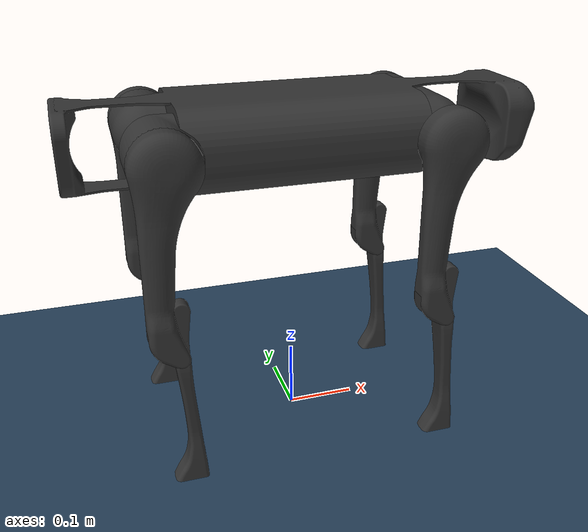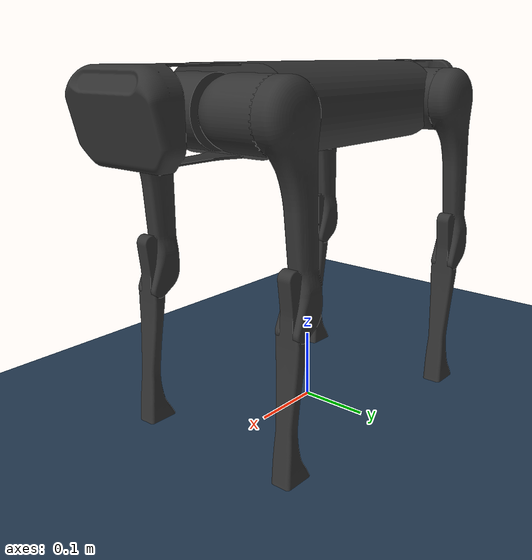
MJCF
<mujoco model="go1 scene">
  <include file="go1.xml"/>

  <statistic center="0 0 0.1" extent="0.8"/>

  <visual>
    <headlight diffuse="0.6 0.6 0.6" ambient="0.3 0.3 0.3" specular="0 0 0"/>
    <rgba haze="0.15 0.25 0.35 1"/>
    <global azimuth="-130" elevation="-20"/>
  </visual>

  <asset>
    <texture type="skybox" builtin="gradient" rgb1="0.3 0.5 0.7" rgb2="0 0 0" width="512" height="3072"/>
    <texture type="2d" name="groundplane" builtin="checker" mark="edge" rgb1="0.2 0.3 0.4" rgb2="0.1 0.2 0.3"
      markrgb="0.8 0.8 0.8" width="300" height="300"/>
    <material name="groundplane" texture="groundplane" texuniform="true" texrepeat="5 5" reflectance="0.2"/>
  </asset>

  <worldbody>
    <light pos="0 0 1.5" dir="0 0 -1" directional="true"/>
    <geom name="floor" size="0 0 0.05" type="plane" material="groundplane"/>

  </worldbody>
</mujoco>

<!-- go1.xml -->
<mujoco model="go1">
  <compiler angle="radian" meshdir="assets" autolimits="true"/>

  <option cone="elliptic" impratio="100"/>

  <default>
    <default class="go1">
      <geom friction="0.4" margin="0.001" condim="1" />
      <joint axis="0 1 0" damping="0.1" armature="0.01" frictionloss="0.2" />
      <motor ctrlrange="-23.7 23.7" />
      <default class="abduction">
        <joint axis="1 0 0" range="-0.863 0.863" />
      </default>
      <default class="hip">
        <default class="front_hip">
          <joint range="-1.5708 3.4907" />
        </default>
        <default class="back_hip">
          <joint range="-0.686 4.501" />
        </default>
      </default>
      <default class="knee">
        <joint range="-2.818 -0.888" />
        <motor ctrlrange="-35.55 35.55" />
      </default>
      <default class="visual">
        <geom type="mesh" contype="0" conaffinity="0" group="2" material="gray"/>
      </default>
      <default class="collision">
        <geom group="3" />
        <default class="foot">
          <geom type="sphere" size="0.023" pos="-0.002 0 -0.213" priority="1" condim="6"
            friction="0.8 0.02 0.01" />
        </default>
      </default>
    </default>
  </default>

  <asset>
    <material name="dark" rgba="0.1 0.1 0.1 1"/>
    <material name="metal" rgba=".9 .95 .95 1"/>
    <material name="black" rgba="0 0 0 1"/>
    <material name="ts" rgba="0.359375 0.828125 0.125 1"/>
    <material name="sh" rgba="0.34375 0.703125 0.859375 1"/>
    <material name="white" rgba="1 1 1 1"/>
    <material name="gray" rgba="0.2 0.2 0.2 1" />

    <mesh class="go1" file="trunk.stl"/>
    <mesh class="go1" file="hip.stl"/>
    <mesh class="go1" file="thigh_mirror.stl"/>
    <mesh class="go1" file="calf.stl"/>
    <mesh class="go1" file="thigh.stl"/>
  </asset>

  <worldbody>
    <light name="spotlight" mode="targetbodycom" target="trunk" pos="0 -1 2"/>
    <body name="trunk" pos="0 0 0.445" childclass="go1">
      <camera name="tracking" mode="trackcom" pos="0 -1 0.8" xyaxes="1 0 0 0 1 1"/>
      <site name="head" pos="0.3 0 0" rgba="1 0 0 1" size="0.02" group="5"/>
      <inertial pos="0.0223 0.002 -0.0005" quat="-0.00342088 0.705204 0.000106698 0.708996" mass="5.204"
        diaginertia="0.0716565 0.0630105 0.0168101"/>
      <freejoint/>
      <geom class="visual" mesh="trunk"/>
      <geom class="collision" size="0.125 0.04 0.057" type="box"/>
      <geom class="collision" quat="1 0 1 0" pos="0 -0.04 0" size="0.058 0.125" type="cylinder"/>
      <geom class="collision" quat="1 0 1 0" pos="0 +0.04 0" size="0.058 0.125" type="cylinder"/>
      <geom class="collision" pos="0.25 0 0" size="0.005 0.06 0.05" type="box"/>
      <geom class="collision" pos="0.25 0.06 -0.01" size="0.009 0.035"/>
      <geom class="collision" pos="0.25 -0.06 -0.01" size="0.009 0.035"/>
      <geom class="collision" pos="0.25 0 -0.05" size="0.01 0.06" quat="1 1 0 0"/>
      <geom class="collision" pos="0.255 0 0.0355" size="0.021 0.052" quat="1 1 0 0"/>
      <site name="imu" pos="0 0 0"/>
      <body name="FL_hip" pos="0.1881 0.04675 0">
        <inertial pos="-0.0049166 -0.00762615 -8.865e-05" quat="0.482891 0.495027 0.514169 0.507341" mass="0.68"
          diaginertia="0.000734064 0.000468438 0.000398719"/>
        <joint class="abduction" name="FL_hip_joint"/>
        <geom class="visual" mesh="hip"/>
        <body name="FL_thigh" pos="0 0.08 0">
          <inertial pos="-0.00304722 -0.019315 -0.0305004" quat="0.753383 0.0775126 -0.0272313 0.65243" mass="1.009"
            diaginertia="0.00478717 0.00460903 0.000709268"/>
          <joint class="front_hip" name="FL_thigh_joint"/>
          <geom class="visual" mesh="thigh"/>
          <body name="FL_calf" pos="0 0 -0.213">
            <inertial pos="0.00429862 0.000976676 -0.146197" quat="0.691246 0.00357467 0.00511118 0.722592"
              mass="0.195862" diaginertia="0.00149767 0.00148468 3.58427e-05"/>
            <joint class="knee" name="FL_calf_joint"/>
            <geom class="visual" mesh="calf"/>
            <geom size="0.012 0.06" pos="0.008 0 -0.06" quat="0.994493 0 -0.104807 0"
              type="cylinder" class="collision" />
            <geom size="0.011 0.0325" pos="0.02 0 -0.148" quat="0.999688 0 0.0249974 0"
              type="cylinder" class="collision" />
            <geom name="FL" class="foot"/>
            <site name="FL" pos="0 0 -0.213" type="sphere" size="0.023" group="5"/>
          </body>
        </body>
      </body>
      <body name="FR_hip" pos="0.1881 -0.04675 0">
        <inertial pos="-0.0049166 0.00762615 -8.865e-05" quat="0.507341 0.514169 0.495027 0.482891" mass="0.68"
          diaginertia="0.000734064 0.000468438 0.000398719"/>
        <joint class="abduction" name="FR_hip_joint"/>
        <geom class="visual" mesh="hip" quat="1 0 0 0"/>
        <body name="FR_thigh" pos="0 -0.08 0">
          <inertial pos="-0.00304722 0.019315 -0.0305004" quat="0.65243 -0.0272313 0.0775126 0.753383" mass="1.009"
            diaginertia="0.00478717 0.00460903 0.000709268"/>
          <joint class="front_hip" name="FR_thigh_joint"/>
          <geom class="visual" mesh="thigh_mirror"/>
          <body name="FR_calf" pos="0 0 -0.213">
            <inertial pos="0.00429862 0.000976676 -0.146197" quat="0.691246 0.00357467 0.00511118 0.722592"
              mass="0.195862" diaginertia="0.00149767 0.00148468 3.58427e-05"/>
            <joint class="knee" name="FR_calf_joint"/>
            <geom class="visual" mesh="calf"/>
            <geom size="0.013 0.06" pos="0.01 0 -0.06" quat="0.995004 0 -0.0998334 0"
              type="cylinder" class="collision" />
            <geom size="0.011 0.0325" pos="0.02 0 -0.148" quat="0.999688 0 0.0249974 0"
              type="cylinder" class="collision" />
            <geom name="FR" class="foot"/>
            <site name="FR" pos="0 0 -0.213" type="sphere" size="0.023" group="5"/>
          </body>
        </body>
      </body>
      <body name="RL_hip" pos="-0.1881 0.04675 0">
        <inertial pos="0.0049166 -0.00762615 -8.865e-05" quat="0.514169 0.507341 0.482891 0.495027" mass="0.68"
          diaginertia="0.000734064 0.000468438 0.000398719"/>
        <joint class="abduction" name="RL_hip_joint"/>
        <geom class="visual" quat="0 0 1 0" mesh="hip"/>
        <body name="RL_thigh" pos="0 0.08 0">
          <inertial pos="-0.00304722 -0.019315 -0.0305004" quat="0.753383 0.0775126 -0.0272313 0.65243" mass="1.009"
            diaginertia="0.00478717 0.00460903 0.000709268"/>
          <joint class="back_hip" name="RL_thigh_joint"/>
          <geom class="visual" mesh="thigh"/>
          <body name="RL_calf" pos="0 0 -0.213">
            <inertial pos="0.00429862 0.000976676 -0.146197" quat="0.691246 0.00357467 0.00511118 0.722592"
              mass="0.195862" diaginertia="0.00149767 0.00148468 3.58427e-05"/>
            <joint class="knee" name="RL_calf_joint"/>
            <geom class="visual" mesh="calf"/>
            <geom size="0.013 0.06" pos="0.01 0 -0.06" quat="0.995004 0 -0.0998334 0"
              type="cylinder" class="collision" />
            <geom size="0.011 0.0325" pos="0.02 0 -0.148" quat="0.999688 0 0.0249974 0"
              type="cylinder" class="collision" />
            <geom name="RL" class="foot"/>
            <site name="RL" pos="0 0 -0.213" type="sphere" size="0.023" group="5"/>
          </body>
        </body>
      </body>
      <body name="RR_hip" pos="-0.1881 -0.04675 0">
        <inertial pos="0.0049166 0.00762615 -8.865e-05" quat="0.495027 0.482891 0.507341 0.514169" mass="0.68"
          diaginertia="0.000734064 0.000468438 0.000398719"/>
        <joint class="abduction" name="RR_hip_joint"/>
        <geom class="visual" quat="0 0 0 -1" mesh="hip"/>
        <body name="RR_thigh" pos="0 -0.08 0">
          <inertial pos="-0.00304722 0.019315 -0.0305004" quat="0.65243 -0.0272313 0.0775126 0.753383" mass="1.009"
            diaginertia="0.00478717 0.00460903 0.000709268"/>
          <joint class="back_hip" name="RR_thigh_joint"/>
          <geom class="visual" mesh="thigh_mirror"/>
          <body name="RR_calf" pos="0 0 -0.213">
            <inertial pos="0.00429862 0.000976676 -0.146197" quat="0.691246 0.00357467 0.00511118 0.722592"
              mass="0.195862" diaginertia="0.00149767 0.00148468 3.58427e-05"/>
            <joint class="knee" name="RR_calf_joint"/>
            <geom class="visual" mesh="calf"/>
            <geom size="0.013 0.06" pos="0.01 0 -0.06" quat="0.995004 0 -0.0998334 0"
              type="cylinder" class="collision" />
            <geom size="0.011 0.0325" pos="0.02 0 -0.148" quat="0.999688 0 0.0249974 0"
              type="cylinder" class="collision" />
            <geom name="RR" class="foot"/>
            <site name="RR" pos="0 0 -0.213" type="sphere" size="0.023" group="5"/>
          </body>
        </body>
      </body>
    </body>
  </worldbody>

  <actuator>
    <position class="abduction" name="FL_hip" joint="FL_hip_joint"/>
    <position class="hip" name="FL_thigh" joint="FL_thigh_joint"/>
    <position class="knee" name="FL_calf" joint="FL_calf_joint"/>
    <position class="abduction" name="FR_hip" joint="FR_hip_joint"/>
    <position class="hip" name="FR_thigh" joint="FR_thigh_joint"/>
    <position class="knee" name="FR_calf" joint="FR_calf_joint"/>
    <position class="abduction" name="RL_hip" joint="RL_hip_joint"/>
    <position class="hip" name="RL_thigh" joint="RL_thigh_joint"/>
    <position class="knee" name="RL_calf" joint="RL_calf_joint"/>
    <position class="abduction" name="RR_hip" joint="RR_hip_joint"/>
    <position class="hip" name="RR_thigh" joint="RR_thigh_joint"/>
    <position class="knee" name="RR_calf" joint="RR_calf_joint"/>
  </actuator>

  <!-- This settings' is same "Go2.xml". We may need to change settings. -->
  <sensor>
    <jointpos name="FL_hip_pos" joint="FL_hip_joint" />
    <jointpos name="FL_thigh_pos" joint="FL_thigh_joint" />
    <jointpos name="FL_calf_pos" joint="FL_calf_joint" />
    <jointpos name="FR_hip_pos" joint="FR_hip_joint" />
    <jointpos name="FR_thigh_pos" joint="FR_thigh_joint" />
    <jointpos name="FR_calf_pos" joint="FR_calf_joint" />
    <jointpos name="RL_hip_pos" joint="RL_hip_joint" />
    <jointpos name="RL_thigh_pos" joint="RL_thigh_joint" />
    <jointpos name="RL_calf_pos" joint="RL_calf_joint" />
    <jointpos name="RR_hip_pos" joint="RR_hip_joint" />
    <jointpos name="RR_thigh_pos" joint="RR_thigh_joint" />
    <jointpos name="RR_calf_pos" joint="RR_calf_joint" />

    <jointvel name="FL_hip_vel" joint="FL_hip_joint" />
    <jointvel name="FL_thigh_vel" joint="FL_thigh_joint" />
    <jointvel name="FL_calf_vel" joint="FL_calf_joint" />
    <jointvel name="FR_hip_vel" joint="FR_hip_joint" />
    <jointvel name="FR_thigh_vel" joint="FR_thigh_joint" />
    <jointvel name="FR_calf_vel" joint="FR_calf_joint" />
    <jointvel name="RL_hip_vel" joint="RL_hip_joint" />
    <jointvel name="RL_thigh_vel" joint="RL_thigh_joint" />
    <jointvel name="RL_calf_vel" joint="RL_calf_joint" />
    <jointvel name="RR_hip_vel" joint="RR_hip_joint" />
    <jointvel name="RR_thigh_vel" joint="RR_thigh_joint" />
    <jointvel name="RR_calf_vel" joint="RR_calf_joint" />

    <jointactuatorfrc name="FL_hip_torque" joint="FL_hip_joint" noise="0.01" />
    <jointactuatorfrc name="FL_thigh_torque" joint="FL_thigh_joint" noise="0.01" />
    <jointactuatorfrc name="FL_calf_torque" joint="FL_calf_joint" noise="0.01" />
    <jointactuatorfrc name="FR_hip_torque" joint="FR_hip_joint" noise="0.01" />
    <jointactuatorfrc name="FR_thigh_torque" joint="FR_thigh_joint" noise="0.01" />
    <jointactuatorfrc name="FR_calf_torque" joint="FR_calf_joint" noise="0.01" />
    <jointactuatorfrc name="RL_hip_torque" joint="RR_hip_joint" noise="0.01" />
    <jointactuatorfrc name="RL_thigh_torque" joint="RR_thigh_joint" noise="0.01" />
    <jointactuatorfrc name="RL_calf_torque" joint="RR_calf_joint" noise="0.01" />
    <jointactuatorfrc name="RR_hip_torque" joint="RR_hip_joint" noise="0.01" />
    <jointactuatorfrc name="RR_thigh_torque" joint="RR_thigh_joint" noise="0.01" />
    <jointactuatorfrc name="RR_calf_torque" joint="RR_calf_joint" noise="0.01" />

    <framequat name="imu_quat" objtype="site" objname="imu" />
    <gyro name="imu_gyro" site="imu" />
    <accelerometer name="imu_acc" site="imu" />

    <framepos name="frame_pos" objtype="site" objname="imu" />
    <framelinvel name="frame_vel" objtype="site" objname="imu" />
  </sensor>
</mujoco>
